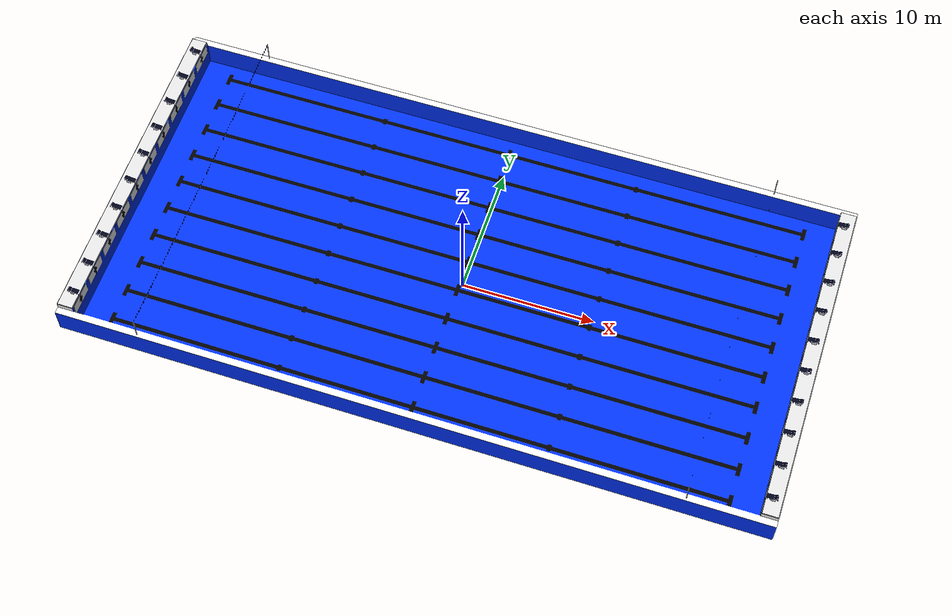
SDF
<?xml version='1.0' encoding='UTF-8'?>
<sdf version="1.6">
    <model name="swimming_pool">
        <static>true</static>
  <link name="pool">
      <visual name="visual">
                <geometry>
                    <mesh>
          <uri>model://swimming_pool/meshes/2mm.dae</uri>
                    </mesh>
                </geometry>
            </visual>
    <collision name="pool_collision">
      <geometry>
        <mesh>
          <uri>model://swimming_pool/meshes/2mm.dae</uri>
          <scale>1 1 1</scale>
        </mesh>
      </geometry>
      <surface>
        <contact>
          <collide_without_contact>false</collide_without_contact>
          <collide_bitmask>0x01</collide_bitmask>
        </contact>
      </surface>
    </collision>
  </link>
    </model>
</sdf>
